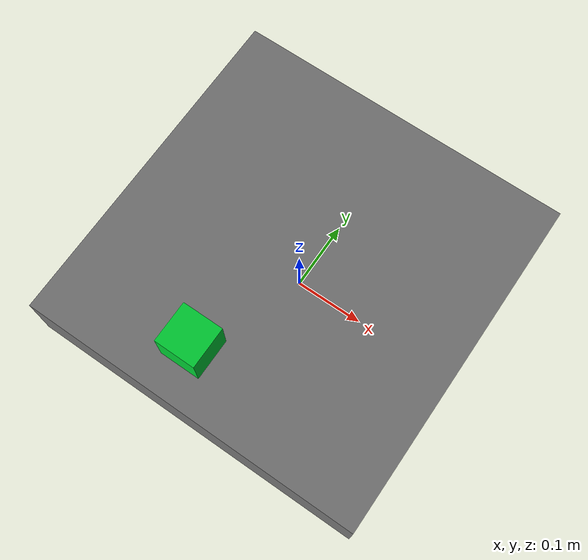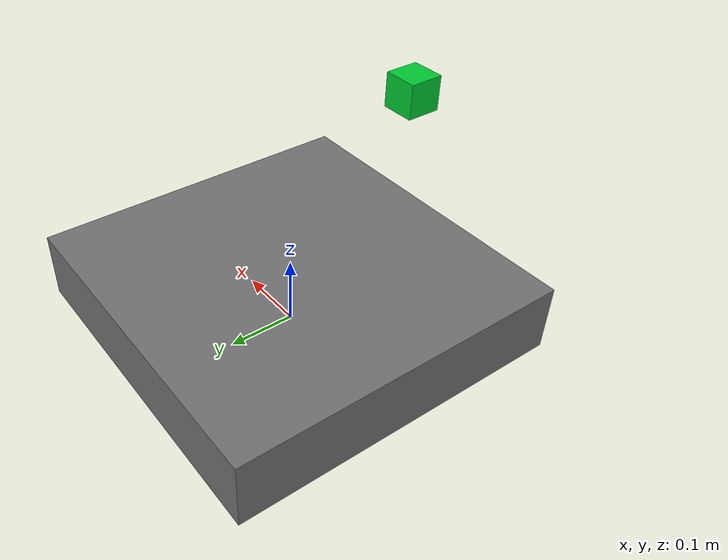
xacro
<?xml version="1.0"?>
<robot name="sentry_robot" xmlns:xacro="http://www.ros.org/wiki/xacro">
  <xacro:arg name="base_to_gimbal_xyz" default="0 0 0.12"/>
  <xacro:arg name="base_to_gimbal_rpy" default="0 0 0"/>
  <xacro:arg name="base_to_lidar_xyz" default="0.0 -0.20 0.30"/>
  <xacro:arg name="base_to_lidar_rpy" default="0 0 0"/>
  <xacro:arg name="base_to_imu_xyz" default="$(arg base_to_lidar_xyz)"/>
  <xacro:arg name="base_to_imu_rpy" default="$(arg base_to_lidar_rpy)"/>

  <link name="base_footprint"/>

  <link name="base_link">
    <visual>
      <origin xyz="0 0 0.05" rpy="0 0 0"/>
      <geometry>
        <box size="0.50 0.50 0.10"/>
      </geometry>
      <material name="body_gray">
        <color rgba="0.45 0.45 0.45 1.0"/>
      </material>
    </visual>
    <collision>
      <origin xyz="0 0 0.05" rpy="0 0 0"/>
      <geometry>
        <box size="0.50 0.50 0.10"/>
      </geometry>
    </collision>
  </link>

  <joint name="base_footprint_joint" type="fixed">
    <parent link="base_footprint"/>
    <child link="base_link"/>
    <origin xyz="0 0 0" rpy="0 0 0"/>
  </joint>

  <link name="gimbal_yaw"/>

  <joint name="gimbal_yaw_joint" type="fixed">
    <parent link="base_link"/>
    <child link="gimbal_yaw"/>
    <origin xyz="$(arg base_to_gimbal_xyz)" rpy="$(arg base_to_gimbal_rpy)"/>
  </joint>

  <link name="left_mid360">
    <visual>
      <origin xyz="0 0 0" rpy="0 0 0"/>
      <geometry>
        <box size="0.05 0.05 0.05"/>
      </geometry>
      <material name="lidar_green">
        <color rgba="0.0 0.8 0.2 1.0"/>
      </material>
    </visual>
  </link>

  <joint name="left_mid360_joint" type="fixed">
    <parent link="base_link"/>
    <child link="left_mid360"/>
    <origin xyz="$(arg base_to_lidar_xyz)" rpy="$(arg base_to_lidar_rpy)"/>
  </joint>

  <link name="imu_link"/>

  <joint name="imu_joint" type="fixed">
    <parent link="base_link"/>
    <child link="imu_link"/>
    <origin xyz="$(arg base_to_imu_xyz)" rpy="$(arg base_to_imu_rpy)"/>
  </joint>
</robot>
